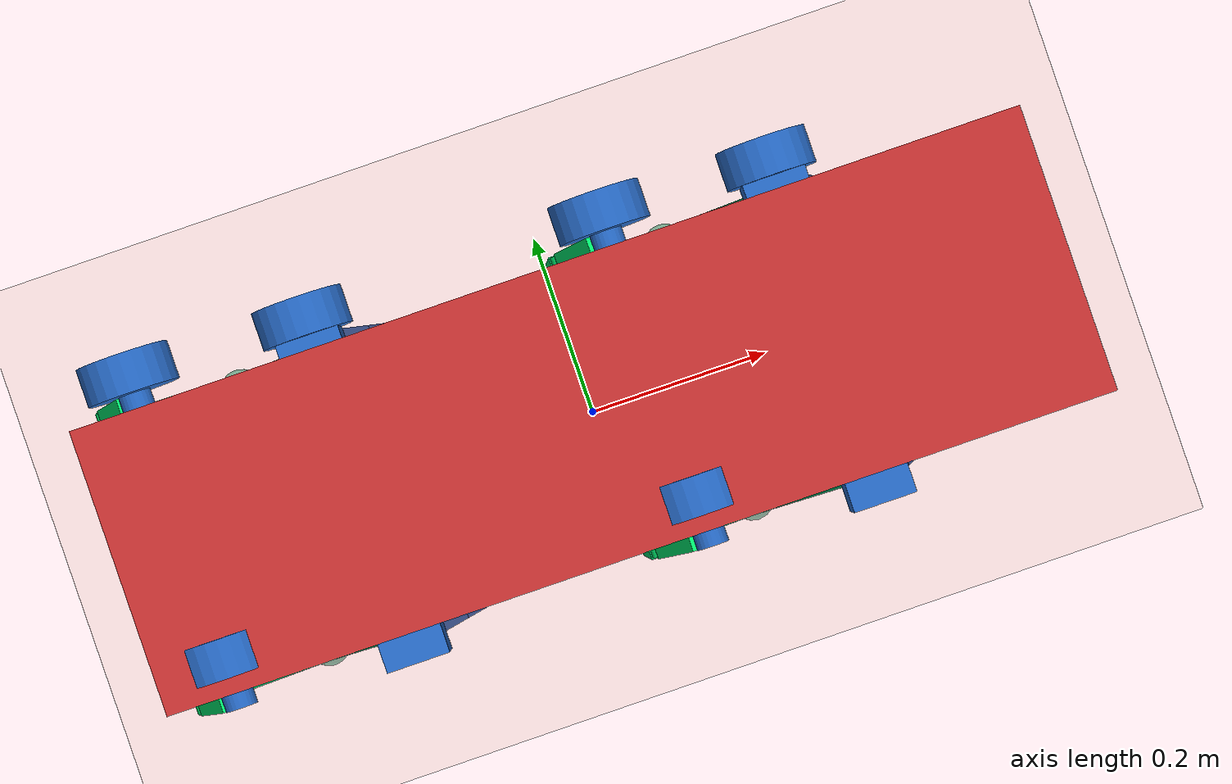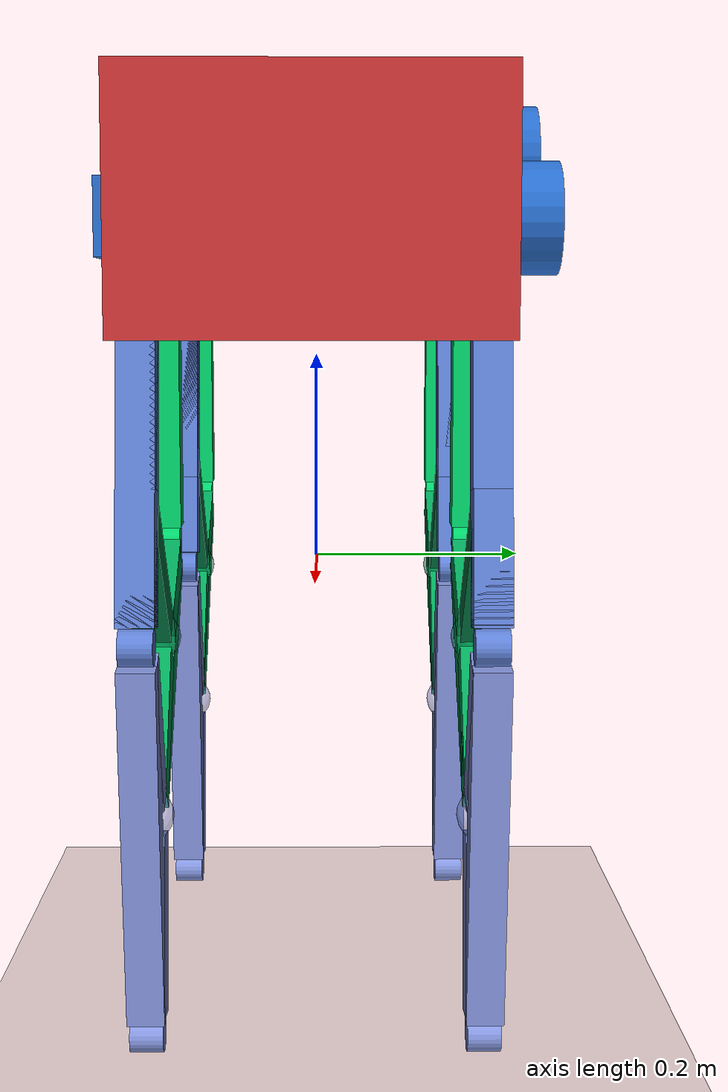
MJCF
<?xml version="1.0" encoding="utf-8"?>
<mujoco model="quadruped_torso">
  <compiler angle="radian" inertiafromgeom="true" coordinate="local" />
  <option timestep="0.01" gravity="0 0 -9.81" />
  <worldbody>
    <geom name="floor" type="plane" size="2 2 0.1" pos="0 0 -0.5" rgba="6 0.9 0.9 1" />
    <body name="torso" pos="0 0 0.32" quat="1 0 0 0">
      <geom name="torso_body" type="box" size="0.5 0.15 0.1" rgba="0.8 0.2 0.2 1" />
      <inertial pos="0 0 0" mass="2.0" diaginertia="0.1 0.2 0.1" />
      <body name="leg_front_right" pos="0.25 0.15 0">
        <geom name="G_vis0_front_right" type="box" rgba="0.1568627450980392 0.42745098039215684 0.8 1.0" contype="1" conaffinity="1" pos="0.0 0.0 0.0" quat="1.0 0.0 0.0 0.0" size="0.0335 0.0335 0.0335" />
        <inertial pos="0.0 0.0 0.0" mass="0.04903493747122909" diaginertia="3.66863057180579e-05 3.66863057180579e-05 3.66863057180579e-05" />
        <body name="L3_front_right" pos="0.0 0.0 0.0" quat="0.07437622984429398 5.650851124421949e-17 0.9972302524663743 5.650851124421949e-17">
          <joint name="Main_ground_front_right" type="hinge" axis="0 1 0" range="-3.141592653589793 3.141592653589793" damping="0.1" />
          <geom name="L3_vis0_front_right" type="box" rgba="0.37254901960784315 0.5019607843137255 0.8352941176470589 1.0" contype="1" conaffinity="1" pos="6.1321225795853815e-18 0.0 0.3057830760522891" quat="1.0 0.0 0.0 0.0" size="0.016750000417232513 0.016750000417232513 0.041494395021298744" />
          <geom name="L3_vis1_front_right" type="box" rgba="0.37254901960784315 0.5019607843137255 0.8352941176470589 1.0" contype="1" conaffinity="1" pos="3.974438985929238e-18 0.0 0.12376934030687893" quat="1.0 0.0 0.0 0.0" size="0.016750000417232513 0.016750000417232513 0.10701933988964642" />
          <geom name="L3_vis2_front_right" type="box" rgba="0.37254901960784315 0.5019607843137255 0.8352941176470589 1.0" contype="1" conaffinity="1" pos="2.1576835936561436e-18 0.0 0.1820137357454102" quat="1.0 0.0 0.0 0.0" size="0.016750000417232513 0.016750000417232513 0.16526373532817767" />
          <inertial pos="0.0 0.0 0.20386" mass="0.29536707186095634" diaginertia="0.046740090156920405 0.04702657912522108 0.0003417349201298814" />
          <body name="L4_front_right" pos="4.315367187312287e-18 0.0 0.3640274714908204" quat="0.9889363528682975 0.0 0.14834045293024475 0.0">
            <joint name="Main_knee_front_right" type="hinge" axis="0 1 0" range="-3.141592653589793 3.141592653589793" damping="0.1" />
            <geom name="L4_vis0_front_right" type="box" rgba="0.5176470588235295 0.5843137254901961 0.8705882352941177 1.0" contype="1" conaffinity="1" pos="0.025481923004357435 0.0 0.26938032890320707" quat="0.13111872764660734 5.267499460431457e-17 0.9913666724579432 5.267499460431457e-17" size="0.016750000417232513 0.016750000417232513 0.08126739599789375" />
            <geom name="L4_vis1_front_right" type="box" rgba="0.5176470588235295 0.5843137254901961 0.8705882352941177 1.0" contype="1" conaffinity="1" pos="6.938893903907228e-18 0.0 0.1820137357454102" quat="1.0 0.0 0.0 0.0" size="0.016750000417232513 0.016750000417232513 0.16526373532817767" />
            <geom name="L4_vis2_front_right" type="box" rgba="0.5176470588235295 0.5843137254901961 0.8705882352941177 1.0" contype="1" conaffinity="1" pos="0.02548192300435744 0.0 0.08736659315779688" quat="0.1414213562373094 -5.195736337412961e-17 -0.9899494936611666 5.195736337412961e-17" size="0.016750000417232513 0.016750000417232513 0.07425686745547257" />
            <inertial pos="0.01699 0.0 0.17959" mass="0.5012590142024277" diaginertia="0.2619561188565024 0.26221491311633094 0.0003525505859475547" />
            <body name="EE_front_right" pos="0.0 0.0 0.3640274714908204" quat="0.07437622984429398 5.650851124421949e-17 0.9972302524663743 5.650851124421949e-17">
              <geom name="EE_vis0_front_right" type="sphere" rgba="0.6431372549019608 0.6666666666666666 0.9058823529411765 1.0" contype="1" conaffinity="1" pos="0.0 0.0 0.0" quat="1.0 0.0 0.0 0.0" size="0.002142857142857143" />
              <inertial pos="0.0 0.0 0.0" mass="2.979933439782622e-05" diaginertia="5.473347134294612e-11 5.473347134294612e-11 5.473347134294612e-11" />
            </body>
            <body name="Main_ee_L4Unit_front_right" pos="0.0 0.0 0.3640274714908204" quat="0.0525919364819896 0.0525919364819895 0.7051482739233461 -0.705148273923346">
              <geom name="Main_ee_L4Unit_vis0_front_right" type="cylinder" rgba="0.5176470588235295 0.5843137254901961 0.8705882352941177 0.9" contype="1" conaffinity="1" size="0.016 0.015" />
              <inertial pos="0 0 0" mass="0.1" diaginertia="0.00065 0.00065 0.0008" />
            </body>
            <body name="Main_connection_2_L4Pseudo_front_right" pos="0.05096384600871484 0.0 0.17473318631559376" quat="0.8980331588121276 0.0 -0.4399277732468274 0.0">
              <geom name="Main_connection_2_L4Pseudo_vis0_front_right" type="sphere" rgba="0.5176470588235295 0.5843137254901961 0.8705882352941177 0.5" contype="1" conaffinity="1" size="0.02392857202461788" />
              <inertial pos="0 0 0" mass="0.05" diaginertia="1.145153118274651e-05 1.145153118274651e-05 1.145153118274651e-05" />
            </body>
          </body>
          <body name="Main_knee_L3Unit_front_right" pos="4.315367187312287e-18 0.0 0.3640274714908204" quat="0.6992836012750656 0.6992836012750655 0.10489254019125986 -0.10489254019125985">
            <geom name="Main_knee_L3Unit_vis0_front_right" type="cylinder" rgba="0.37254901960784315 0.5019607843137255 0.8352941176470589 0.9" contype="1" conaffinity="1" size="0.016 0.015" />
            <inertial pos="0 0 0" mass="0.1" diaginertia="0.00065 0.00065 0.0008" />
          </body>
          <body name="L8_front_right" pos="7.948877971858476e-18 0.0 0.24753868061375786" quat="0.8807107787388322 0.0 0.47365443544132435 0.0">
            <joint name="Main_connection_1_front_right" type="hinge" axis="0 1 0" range="-3.141592653589793 3.141592653589793" damping="0.1" />
            <geom name="L8_vis0_front_right" type="box" rgba="0.01568627450980392 0.5058823529411764 0.29411764705882354 1.0" contype="1" conaffinity="1" pos="-0.0 0.0 0.1009" quat="1.0 0.0 0.0 0.0" size="0.01675 0.01675 0.08415218035305282" />
            <inertial pos="-0.0 0.0 0.1009" mass="0.13655992824415478" diaginertia="0.0003351249810435438 0.0003351249810435438 2.554239657866712e-05" />
            <body name="branch_0_L8Pseudo_front_right" pos="0.0 0.0 0.20180436070610566" quat="-0.6966608812115375 8.658629315504744e-17 0.717400597009484 8.658629315504744e-17">
              <geom name="branch_0_L8Pseudo_vis0_front_right" type="sphere" rgba="0.01568627450980392 0.5058823529411764 0.29411764705882354 0.5" contype="1" conaffinity="1" size="0.02392857142857143" />
              <inertial pos="0 0 0" mass="0.05" diaginertia="1.1451530612244902e-05 1.1451530612244902e-05 1.1451530612244902e-05" />
            </body>
          </body>
          <body name="Main_connection_1_L3Unit_front_right" pos="7.948877971858476e-18 0.0 0.24753868061375786" quat="0.6227565639103132 0.6227565639103133 0.33492426323964625 -0.3349242632396462">
            <geom name="Main_connection_1_L3Unit_vis0_front_right" type="cylinder" rgba="0.37254901960784315 0.5019607843137255 0.8352941176470589 0.9" contype="1" conaffinity="1" size="0.016 0.015" />
            <inertial pos="0 0 0" mass="0.1" diaginertia="0.00065 0.00065 0.0008" />
          </body>
        </body>
        <body name="Main_ground_GActuator_front_right" pos="0.0 0.03675000041723252 0.0" quat="0.0525919364819896 0.0525919364819895 0.7051482739233461 -0.705148273923346">
          <geom name="Main_ground_GActuator_vis0_front_right" type="cylinder" rgba="0.1568627450980392 0.42745098039215684 0.8 0.9" contype="1" conaffinity="1" size="0.048 0.02" />
          <inertial pos="0 0 0" mass="0.44" diaginertia="0.0067466666666666664 0.0067466666666666664 0.01056" />
        </body>
        <body name="Main_ground_GUnit_front_right" pos="0.0 0.0 0.0" quat="0.0525919364819896 0.0525919364819895 0.7051482739233461 -0.705148273923346">
          <geom name="Main_ground_GUnit_vis0_front_right" type="cylinder" rgba="0.1568627450980392 0.42745098039215684 0.8 0.9" contype="1" conaffinity="1" size="0.016750000417232513 0.016750000417232513" />
          <inertial pos="0 0 0" mass="0.1" diaginertia="0.0006979166840513548 0.0006979166840513548 0.0008375000208616257" />
        </body>
        <body name="L7_front_right" pos="-0.18000000000000002 0.0 0.06480000000000001" quat="-0.15086421372374947 6.976927370879126e-17 0.9885544947131214 6.976927370879126e-17">
          <joint name="Ground_connection_front_right" type="hinge" axis="0 1 0" range="-3.141592653589793 3.141592653589793" damping="0.1" />
          <geom name="L7_vis0_front_right" type="box" rgba="0.0 1.0 0.4666666666666667 1.0" contype="1" conaffinity="1" pos="-0.0 0.0 0.07543" quat="1.0 0.0 0.0 0.0" size="0.01675 0.01675 0.05868374576408096" />
          <inertial pos="-0.0 0.0 0.07543" mass="0.09523042750668785" diaginertia="0.00011822364017562971 0.00011822364017562971 1.7812057878230073e-05" />
          <body name="L6_front_right" pos="-5.551115123125783e-17 0.0 0.15086749152816192" quat="0.9908668077066263 0.0 -0.13484424120176491 0.0">
            <joint name="branch_2_front_right" type="hinge" axis="0 1 0" range="-3.141592653589793 3.141592653589793" damping="0.1" />
            <geom name="L6_vis0_front_right" type="box" rgba="0.0 0.8274509803921568 0.4196078431372549 1.0" contype="1" conaffinity="1" pos="0.0 0.0 0.11308" quat="1.0 0.0 0.0 0.0" size="0.01675 0.01675 0.09632924654860417" />
            <inertial pos="0.0 0.0 0.11308" mass="0.15632054857404132" diaginertia="0.0004981355538131413 0.0004981355538131413 2.9238455939536312e-05" />
            <body name="L5_front_right" pos="1.1102230246251565e-16 0.0 0.2261584930972083" quat="0.9221247588124448 0.0 -0.3868926584791841 0.0">
              <joint name="branch_1_front_right" type="hinge" axis="0 1 0" range="-3.141592653589793 3.141592653589793" damping="0.1" />
              <geom name="L5_vis0_front_right" type="box" rgba="0.0 0.6627450980392157 0.3607843137254902 1.0" contype="1" conaffinity="1" pos="-0.017313186151101806 0.0 0.22013287438567025" quat="0.9948405908123037 0.0 0.10145047497289715 0.0" size="0.016750000417232513 0.016750000417232513 0.06902079181415591" />
              <geom name="L5_vis1_front_right" type="box" rgba="0.0 0.6627450980392157 0.3607843137254902 1.0" contype="1" conaffinity="1" pos="-0.017313186151101806 0.0 0.06806381112821479" quat="0.12422055223167687 5.315175785701328e-17 0.9922546318376434 5.315175785701328e-17" size="0.016750000417232513 0.016750000417232513 0.053481251885428294" />
              <geom name="L5_vis2_front_right" type="box" rgba="0.0 0.6627450980392157 0.3607843137254902 1.0" contype="1" conaffinity="1" pos="0.0 0.0 0.15206906325745548" quat="1.0 0.0 0.0 0.0" size="0.016750000417232513 0.016750000417232513 0.13531906284022296" />
              <inertial pos="-0.01154 0.0 0.14676" mass="0.37744913378400663" diaginertia="0.11719219359867927 0.12293904243849035 0.005817447558393084" />
              <body name="branch_0_L5Pseudo_front_right" pos="-0.03462637230220361 0.0 0.13612762225642958" quat="1.0 0.0 0.0 0.0">
                <joint name="branch_0_L5_revolute_front_right" type="hinge" axis="0 1 0" range="-3.141592653589793 3.141592653589793" damping="0.1" />
                <geom name="branch_0_L5Pseudo_vis0_front_right" type="sphere" rgba="0.0 0.6627450980392157 0.3607843137254902 0.5" contype="1" conaffinity="1" size="0.02392857202461788" />
                <inertial pos="0 0 0" mass="0.05" diaginertia="1.145153118274651e-05 1.145153118274651e-05 1.145153118274651e-05" />
              </body>
              <body name="Main_connection_2_L5Pseudo_front_right" pos="0.0 0.0 0.30413812651491096" quat="1.0 0.0 0.0 0.0">
                <joint name="Main_connection_2_L5_revolute_front_right" type="hinge" axis="0 1 0" range="-3.141592653589793 3.141592653589793" damping="0.1" />
                <geom name="Main_connection_2_L5Pseudo_vis0_front_right" type="sphere" rgba="0.0 0.6627450980392157 0.3607843137254902 0.5" contype="1" conaffinity="1" size="0.02392857202461788" />
                <inertial pos="0 0 0" mass="0.05" diaginertia="1.145153118274651e-05 1.145153118274651e-05 1.145153118274651e-05" />
              </body>
            </body>
            <body name="branch_1_L6Unit_front_right" pos="1.1102230246251565e-16 0.0 0.2261584930972083" quat="0.6520406700562894 0.6520406700562893 -0.27357442240192215 0.273574422401922">
              <geom name="branch_1_L6Unit_vis0_front_right" type="cylinder" rgba="0.0 0.8274509803921568 0.4196078431372549 0.9" contype="1" conaffinity="1" size="0.016 0.015" />
              <inertial pos="0 0 0" mass="0.1" diaginertia="0.00065 0.00065 0.0008" />
            </body>
          </body>
          <body name="branch_2_L7Unit_front_right" pos="-5.551115123125783e-17 0.0 0.15086749152816192" quat="0.7006486389820223 0.7006486389820222 -0.09534927735772235 0.09534927735772233">
            <geom name="branch_2_L7Unit_vis0_front_right" type="cylinder" rgba="0.0 1.0 0.4666666666666667 0.9" contype="1" conaffinity="1" size="0.016 0.015" />
            <inertial pos="0 0 0" mass="0.1" diaginertia="0.00065 0.00065 0.0008" />
          </body>
        </body>
        <body name="Ground_connection_GActuator_front_right" pos="-0.18000000000000002 0.036750000000000005 0.06480000000000001" quat="-0.10667710856243973 -0.10667710856243982 0.6990135867840891 -0.6990135867840892">
          <geom name="Ground_connection_GActuator_vis0_front_right" type="cylinder" rgba="0.1568627450980392 0.42745098039215684 0.8 0.9" contype="1" conaffinity="1" size="0.048 0.02" />
          <inertial pos="0 0 0" mass="0.44" diaginertia="0.0067466666666666664 0.0067466666666666664 0.01056" />
        </body>
        <body name="Ground_connection_GUnit_front_right" pos="-0.18000000000000002 0.0 0.06480000000000001" quat="-0.10667710856243973 -0.10667710856243982 0.6990135867840891 -0.6990135867840892">
          <geom name="Ground_connection_GUnit_vis0_front_right" type="cylinder" rgba="0.1568627450980392 0.42745098039215684 0.8 0.9" contype="1" conaffinity="1" size="0.01675 0.01675" />
          <inertial pos="0 0 0" mass="0.1" diaginertia="0.0006979166666666668 0.0006979166666666668 0.0008375000000000001" />
        </body>
      </body>
      <body name="leg_front_left" pos="0.25 -0.15 0">
        <geom name="G_vis0_front_left" type="box" rgba="0.1568627450980392 0.42745098039215684 0.8 1.0" contype="1" conaffinity="1" pos="0.0 0.0 0.0" quat="1.0 0.0 0.0 0.0" size="0.0335 0.0335 0.0335" />
        <inertial pos="0.0 0.0 0.0" mass="0.04903493747122909" diaginertia="3.66863057180579e-05 3.66863057180579e-05 3.66863057180579e-05" />
        <body name="L3_front_left" pos="0.0 0.0 0.0" quat="0.07437622984429398 5.650851124421949e-17 0.9972302524663743 5.650851124421949e-17">
          <joint name="Main_ground_front_left" type="hinge" axis="0 1 0" range="-3.141592653589793 3.141592653589793" damping="0.1" />
          <geom name="L3_vis0_front_left" type="box" rgba="0.37254901960784315 0.5019607843137255 0.8352941176470589 1.0" contype="1" conaffinity="1" pos="6.1321225795853815e-18 0.0 0.3057830760522891" quat="1.0 0.0 0.0 0.0" size="0.016750000417232513 0.016750000417232513 0.041494395021298744" />
          <geom name="L3_vis1_front_left" type="box" rgba="0.37254901960784315 0.5019607843137255 0.8352941176470589 1.0" contype="1" conaffinity="1" pos="3.974438985929238e-18 0.0 0.12376934030687893" quat="1.0 0.0 0.0 0.0" size="0.016750000417232513 0.016750000417232513 0.10701933988964642" />
          <geom name="L3_vis2_front_left" type="box" rgba="0.37254901960784315 0.5019607843137255 0.8352941176470589 1.0" contype="1" conaffinity="1" pos="2.1576835936561436e-18 0.0 0.1820137357454102" quat="1.0 0.0 0.0 0.0" size="0.016750000417232513 0.016750000417232513 0.16526373532817767" />
          <inertial pos="0.0 0.0 0.20386" mass="0.29536707186095634" diaginertia="0.046740090156920405 0.04702657912522108 0.0003417349201298814" />
          <body name="L4_front_left" pos="4.315367187312287e-18 0.0 0.3640274714908204" quat="0.9889363528682975 0.0 0.14834045293024475 0.0">
            <joint name="Main_knee_front_left" type="hinge" axis="0 1 0" range="-3.141592653589793 3.141592653589793" damping="0.1" />
            <geom name="L4_vis0_front_left" type="box" rgba="0.5176470588235295 0.5843137254901961 0.8705882352941177 1.0" contype="1" conaffinity="1" pos="0.025481923004357435 0.0 0.26938032890320707" quat="0.13111872764660734 5.267499460431457e-17 0.9913666724579432 5.267499460431457e-17" size="0.016750000417232513 0.016750000417232513 0.08126739599789375" />
            <geom name="L4_vis1_front_left" type="box" rgba="0.5176470588235295 0.5843137254901961 0.8705882352941177 1.0" contype="1" conaffinity="1" pos="6.938893903907228e-18 0.0 0.1820137357454102" quat="1.0 0.0 0.0 0.0" size="0.016750000417232513 0.016750000417232513 0.16526373532817767" />
            <geom name="L4_vis2_front_left" type="box" rgba="0.5176470588235295 0.5843137254901961 0.8705882352941177 1.0" contype="1" conaffinity="1" pos="0.02548192300435744 0.0 0.08736659315779688" quat="0.1414213562373094 -5.195736337412961e-17 -0.9899494936611666 5.195736337412961e-17" size="0.016750000417232513 0.016750000417232513 0.07425686745547257" />
            <inertial pos="0.01699 0.0 0.17959" mass="0.5012590142024277" diaginertia="0.2619561188565024 0.26221491311633094 0.0003525505859475547" />
            <body name="EE_front_left" pos="0.0 0.0 0.3640274714908204" quat="0.07437622984429398 5.650851124421949e-17 0.9972302524663743 5.650851124421949e-17">
              <geom name="EE_vis0_front_left" type="sphere" rgba="0.6431372549019608 0.6666666666666666 0.9058823529411765 1.0" contype="1" conaffinity="1" pos="0.0 0.0 0.0" quat="1.0 0.0 0.0 0.0" size="0.002142857142857143" />
              <inertial pos="0.0 0.0 0.0" mass="2.979933439782622e-05" diaginertia="5.473347134294612e-11 5.473347134294612e-11 5.473347134294612e-11" />
            </body>
            <body name="Main_ee_L4Unit_front_left" pos="0.0 0.0 0.3640274714908204" quat="0.0525919364819896 0.0525919364819895 0.7051482739233461 -0.705148273923346">
              <geom name="Main_ee_L4Unit_vis0_front_left" type="cylinder" rgba="0.5176470588235295 0.5843137254901961 0.8705882352941177 0.9" contype="1" conaffinity="1" size="0.016 0.015" />
              <inertial pos="0 0 0" mass="0.1" diaginertia="0.00065 0.00065 0.0008" />
            </body>
            <body name="Main_connection_2_L4Pseudo_front_left" pos="0.05096384600871484 0.0 0.17473318631559376" quat="0.8980331588121276 0.0 -0.4399277732468274 0.0">
              <geom name="Main_connection_2_L4Pseudo_vis0_front_left" type="sphere" rgba="0.5176470588235295 0.5843137254901961 0.8705882352941177 0.5" contype="1" conaffinity="1" size="0.02392857202461788" />
              <inertial pos="0 0 0" mass="0.05" diaginertia="1.145153118274651e-05 1.145153118274651e-05 1.145153118274651e-05" />
            </body>
          </body>
          <body name="Main_knee_L3Unit_front_left" pos="4.315367187312287e-18 0.0 0.3640274714908204" quat="0.6992836012750656 0.6992836012750655 0.10489254019125986 -0.10489254019125985">
            <geom name="Main_knee_L3Unit_vis0_front_left" type="cylinder" rgba="0.37254901960784315 0.5019607843137255 0.8352941176470589 0.9" contype="1" conaffinity="1" size="0.016 0.015" />
            <inertial pos="0 0 0" mass="0.1" diaginertia="0.00065 0.00065 0.0008" />
          </body>
          <body name="L8_front_left" pos="7.948877971858476e-18 0.0 0.24753868061375786" quat="0.8807107787388322 0.0 0.47365443544132435 0.0">
            <joint name="Main_connection_1_front_left" type="hinge" axis="0 1 0" range="-3.141592653589793 3.141592653589793" damping="0.1" />
            <geom name="L8_vis0_front_left" type="box" rgba="0.01568627450980392 0.5058823529411764 0.29411764705882354 1.0" contype="1" conaffinity="1" pos="-0.0 0.0 0.1009" quat="1.0 0.0 0.0 0.0" size="0.01675 0.01675 0.08415218035305282" />
            <inertial pos="-0.0 0.0 0.1009" mass="0.13655992824415478" diaginertia="0.0003351249810435438 0.0003351249810435438 2.554239657866712e-05" />
            <body name="branch_0_L8Pseudo_front_left" pos="0.0 0.0 0.20180436070610566" quat="-0.6966608812115375 8.658629315504744e-17 0.717400597009484 8.658629315504744e-17">
              <geom name="branch_0_L8Pseudo_vis0_front_left" type="sphere" rgba="0.01568627450980392 0.5058823529411764 0.29411764705882354 0.5" contype="1" conaffinity="1" size="0.02392857142857143" />
              <inertial pos="0 0 0" mass="0.05" diaginertia="1.1451530612244902e-05 1.1451530612244902e-05 1.1451530612244902e-05" />
            </body>
          </body>
          <body name="Main_connection_1_L3Unit_front_left" pos="7.948877971858476e-18 0.0 0.24753868061375786" quat="0.6227565639103132 0.6227565639103133 0.33492426323964625 -0.3349242632396462">
            <geom name="Main_connection_1_L3Unit_vis0_front_left" type="cylinder" rgba="0.37254901960784315 0.5019607843137255 0.8352941176470589 0.9" contype="1" conaffinity="1" size="0.016 0.015" />
            <inertial pos="0 0 0" mass="0.1" diaginertia="0.00065 0.00065 0.0008" />
          </body>
        </body>
        <body name="Main_ground_GActuator_front_left" pos="0.0 0.03675000041723252 0.0" quat="0.0525919364819896 0.0525919364819895 0.7051482739233461 -0.705148273923346">
          <geom name="Main_ground_GActuator_vis0_front_left" type="cylinder" rgba="0.1568627450980392 0.42745098039215684 0.8 0.9" contype="1" conaffinity="1" size="0.048 0.02" />
          <inertial pos="0 0 0" mass="0.44" diaginertia="0.0067466666666666664 0.0067466666666666664 0.01056" />
        </body>
        <body name="Main_ground_GUnit_front_left" pos="0.0 0.0 0.0" quat="0.0525919364819896 0.0525919364819895 0.7051482739233461 -0.705148273923346">
          <geom name="Main_ground_GUnit_vis0_front_left" type="cylinder" rgba="0.1568627450980392 0.42745098039215684 0.8 0.9" contype="1" conaffinity="1" size="0.016750000417232513 0.016750000417232513" />
          <inertial pos="0 0 0" mass="0.1" diaginertia="0.0006979166840513548 0.0006979166840513548 0.0008375000208616257" />
        </body>
        <body name="L7_front_left" pos="-0.18000000000000002 0.0 0.06480000000000001" quat="-0.15086421372374947 6.976927370879126e-17 0.9885544947131214 6.976927370879126e-17">
          <joint name="Ground_connection_front_left" type="hinge" axis="0 1 0" range="-3.141592653589793 3.141592653589793" damping="0.1" />
          <geom name="L7_vis0_front_left" type="box" rgba="0.0 1.0 0.4666666666666667 1.0" contype="1" conaffinity="1" pos="-0.0 0.0 0.07543" quat="1.0 0.0 0.0 0.0" size="0.01675 0.01675 0.05868374576408096" />
          <inertial pos="-0.0 0.0 0.07543" mass="0.09523042750668785" diaginertia="0.00011822364017562971 0.00011822364017562971 1.7812057878230073e-05" />
          <body name="L6_front_left" pos="-5.551115123125783e-17 0.0 0.15086749152816192" quat="0.9908668077066263 0.0 -0.13484424120176491 0.0">
            <joint name="branch_2_front_left" type="hinge" axis="0 1 0" range="-3.141592653589793 3.141592653589793" damping="0.1" />
            <geom name="L6_vis0_front_left" type="box" rgba="0.0 0.8274509803921568 0.4196078431372549 1.0" contype="1" conaffinity="1" pos="0.0 0.0 0.11308" quat="1.0 0.0 0.0 0.0" size="0.01675 0.01675 0.09632924654860417" />
            <inertial pos="0.0 0.0 0.11308" mass="0.15632054857404132" diaginertia="0.0004981355538131413 0.0004981355538131413 2.9238455939536312e-05" />
            <body name="L5_front_left" pos="1.1102230246251565e-16 0.0 0.2261584930972083" quat="0.9221247588124448 0.0 -0.3868926584791841 0.0">
              <joint name="branch_1_front_left" type="hinge" axis="0 1 0" range="-3.141592653589793 3.141592653589793" damping="0.1" />
              <geom name="L5_vis0_front_left" type="box" rgba="0.0 0.6627450980392157 0.3607843137254902 1.0" contype="1" conaffinity="1" pos="-0.017313186151101806 0.0 0.22013287438567025" quat="0.9948405908123037 0.0 0.10145047497289715 0.0" size="0.016750000417232513 0.016750000417232513 0.06902079181415591" />
              <geom name="L5_vis1_front_left" type="box" rgba="0.0 0.6627450980392157 0.3607843137254902 1.0" contype="1" conaffinity="1" pos="-0.017313186151101806 0.0 0.06806381112821479" quat="0.12422055223167687 5.315175785701328e-17 0.9922546318376434 5.315175785701328e-17" size="0.016750000417232513 0.016750000417232513 0.053481251885428294" />
              <geom name="L5_vis2_front_left" type="box" rgba="0.0 0.6627450980392157 0.3607843137254902 1.0" contype="1" conaffinity="1" pos="0.0 0.0 0.15206906325745548" quat="1.0 0.0 0.0 0.0" size="0.016750000417232513 0.016750000417232513 0.13531906284022296" />
              <inertial pos="-0.01154 0.0 0.14676" mass="0.37744913378400663" diaginertia="0.11719219359867927 0.12293904243849035 0.005817447558393084" />
              <body name="branch_0_L5Pseudo_front_left" pos="-0.03462637230220361 0.0 0.13612762225642958" quat="1.0 0.0 0.0 0.0">
                <joint name="branch_0_L5_revolute_front_left" type="hinge" axis="0 1 0" range="-3.141592653589793 3.141592653589793" damping="0.1" />
                <geom name="branch_0_L5Pseudo_vis0_front_left" type="sphere" rgba="0.0 0.6627450980392157 0.3607843137254902 0.5" contype="1" conaffinity="1" size="0.02392857202461788" />
                <inertial pos="0 0 0" mass="0.05" diaginertia="1.145153118274651e-05 1.145153118274651e-05 1.145153118274651e-05" />
              </body>
              <body name="Main_connection_2_L5Pseudo_front_left" pos="0.0 0.0 0.30413812651491096" quat="1.0 0.0 0.0 0.0">
                <joint name="Main_connection_2_L5_revolute_front_left" type="hinge" axis="0 1 0" range="-3.141592653589793 3.141592653589793" damping="0.1" />
                <geom name="Main_connection_2_L5Pseudo_vis0_front_left" type="sphere" rgba="0.0 0.6627450980392157 0.3607843137254902 0.5" contype="1" conaffinity="1" size="0.02392857202461788" />
                <inertial pos="0 0 0" mass="0.05" diaginertia="1.145153118274651e-05 1.145153118274651e-05 1.145153118274651e-05" />
              </body>
            </body>
            <body name="branch_1_L6Unit_front_left" pos="1.1102230246251565e-16 0.0 0.2261584930972083" quat="0.6520406700562894 0.6520406700562893 -0.27357442240192215 0.273574422401922">
              <geom name="branch_1_L6Unit_vis0_front_left" type="cylinder" rgba="0.0 0.8274509803921568 0.4196078431372549 0.9" contype="1" conaffinity="1" size="0.016 0.015" />
              <inertial pos="0 0 0" mass="0.1" diaginertia="0.00065 0.00065 0.0008" />
            </body>
          </body>
          <body name="branch_2_L7Unit_front_left" pos="-5.551115123125783e-17 0.0 0.15086749152816192" quat="0.7006486389820223 0.7006486389820222 -0.09534927735772235 0.09534927735772233">
            <geom name="branch_2_L7Unit_vis0_front_left" type="cylinder" rgba="0.0 1.0 0.4666666666666667 0.9" contype="1" conaffinity="1" size="0.016 0.015" />
            <inertial pos="0 0 0" mass="0.1" diaginertia="0.00065 0.00065 0.0008" />
          </body>
        </body>
        <body name="Ground_connection_GActuator_front_left" pos="-0.18000000000000002 0.036750000000000005 0.06480000000000001" quat="-0.10667710856243973 -0.10667710856243982 0.6990135867840891 -0.6990135867840892">
          <geom name="Ground_connection_GActuator_vis0_front_left" type="cylinder" rgba="0.1568627450980392 0.42745098039215684 0.8 0.9" contype="1" conaffinity="1" size="0.048 0.02" />
          <inertial pos="0 0 0" mass="0.44" diaginertia="0.0067466666666666664 0.0067466666666666664 0.01056" />
        </body>
        <body name="Ground_connection_GUnit_front_left" pos="-0.18000000000000002 0.0 0.06480000000000001" quat="-0.10667710856243973 -0.10667710856243982 0.6990135867840891 -0.6990135867840892">
          <geom name="Ground_connection_GUnit_vis0_front_left" type="cylinder" rgba="0.1568627450980392 0.42745098039215684 0.8 0.9" contype="1" conaffinity="1" size="0.01675 0.01675" />
          <inertial pos="0 0 0" mass="0.1" diaginertia="0.0006979166666666668 0.0006979166666666668 0.0008375000000000001" />
        </body>
      </body>
      <body name="leg_rear_right" pos="-0.25 0.15 0">
        <geom name="G_vis0_rear_right" type="box" rgba="0.1568627450980392 0.42745098039215684 0.8 1.0" contype="1" conaffinity="1" pos="0.0 0.0 0.0" quat="1.0 0.0 0.0 0.0" size="0.0335 0.0335 0.0335" />
        <inertial pos="0.0 0.0 0.0" mass="0.04903493747122909" diaginertia="3.66863057180579e-05 3.66863057180579e-05 3.66863057180579e-05" />
        <body name="L3_rear_right" pos="0.0 0.0 0.0" quat="0.07437622984429398 5.650851124421949e-17 0.9972302524663743 5.650851124421949e-17">
          <joint name="Main_ground_rear_right" type="hinge" axis="0 1 0" range="-3.141592653589793 3.141592653589793" damping="0.1" />
          <geom name="L3_vis0_rear_right" type="box" rgba="0.37254901960784315 0.5019607843137255 0.8352941176470589 1.0" contype="1" conaffinity="1" pos="6.1321225795853815e-18 0.0 0.3057830760522891" quat="1.0 0.0 0.0 0.0" size="0.016750000417232513 0.016750000417232513 0.041494395021298744" />
          <geom name="L3_vis1_rear_right" type="box" rgba="0.37254901960784315 0.5019607843137255 0.8352941176470589 1.0" contype="1" conaffinity="1" pos="3.974438985929238e-18 0.0 0.12376934030687893" quat="1.0 0.0 0.0 0.0" size="0.016750000417232513 0.016750000417232513 0.10701933988964642" />
          <geom name="L3_vis2_rear_right" type="box" rgba="0.37254901960784315 0.5019607843137255 0.8352941176470589 1.0" contype="1" conaffinity="1" pos="2.1576835936561436e-18 0.0 0.1820137357454102" quat="1.0 0.0 0.0 0.0" size="0.016750000417232513 0.016750000417232513 0.16526373532817767" />
          <inertial pos="0.0 0.0 0.20386" mass="0.29536707186095634" diaginertia="0.046740090156920405 0.04702657912522108 0.0003417349201298814" />
          <body name="L4_rear_right" pos="4.315367187312287e-18 0.0 0.3640274714908204" quat="0.9889363528682975 0.0 0.14834045293024475 0.0">
            <joint name="Main_knee_rear_right" type="hinge" axis="0 1 0" range="-3.141592653589793 3.141592653589793" damping="0.1" />
            <geom name="L4_vis0_rear_right" type="box" rgba="0.5176470588235295 0.5843137254901961 0.8705882352941177 1.0" contype="1" conaffinity="1" pos="0.025481923004357435 0.0 0.26938032890320707" quat="0.13111872764660734 5.267499460431457e-17 0.9913666724579432 5.267499460431457e-17" size="0.016750000417232513 0.016750000417232513 0.08126739599789375" />
            <geom name="L4_vis1_rear_right" type="box" rgba="0.5176470588235295 0.5843137254901961 0.8705882352941177 1.0" contype="1" conaffinity="1" pos="6.938893903907228e-18 0.0 0.1820137357454102" quat="1.0 0.0 0.0 0.0" size="0.016750000417232513 0.016750000417232513 0.16526373532817767" />
            <geom name="L4_vis2_rear_right" type="box" rgba="0.5176470588235295 0.5843137254901961 0.8705882352941177 1.0" contype="1" conaffinity="1" pos="0.02548192300435744 0.0 0.08736659315779688" quat="0.1414213562373094 -5.195736337412961e-17 -0.9899494936611666 5.195736337412961e-17" size="0.016750000417232513 0.016750000417232513 0.07425686745547257" />
            <inertial pos="0.01699 0.0 0.17959" mass="0.5012590142024277" diaginertia="0.2619561188565024 0.26221491311633094 0.0003525505859475547" />
            <body name="EE_rear_right" pos="0.0 0.0 0.3640274714908204" quat="0.07437622984429398 5.650851124421949e-17 0.9972302524663743 5.650851124421949e-17">
              <geom name="EE_vis0_rear_right" type="sphere" rgba="0.6431372549019608 0.6666666666666666 0.9058823529411765 1.0" contype="1" conaffinity="1" pos="0.0 0.0 0.0" quat="1.0 0.0 0.0 0.0" size="0.002142857142857143" />
              <inertial pos="0.0 0.0 0.0" mass="2.979933439782622e-05" diaginertia="5.473347134294612e-11 5.473347134294612e-11 5.473347134294612e-11" />
            </body>
            <body name="Main_ee_L4Unit_rear_right" pos="0.0 0.0 0.3640274714908204" quat="0.0525919364819896 0.0525919364819895 0.7051482739233461 -0.705148273923346">
              <geom name="Main_ee_L4Unit_vis0_rear_right" type="cylinder" rgba="0.5176470588235295 0.5843137254901961 0.8705882352941177 0.9" contype="1" conaffinity="1" size="0.016 0.015" />
              <inertial pos="0 0 0" mass="0.1" diaginertia="0.00065 0.00065 0.0008" />
            </body>
            <body name="Main_connection_2_L4Pseudo_rear_right" pos="0.05096384600871484 0.0 0.17473318631559376" quat="0.8980331588121276 0.0 -0.4399277732468274 0.0">
              <geom name="Main_connection_2_L4Pseudo_vis0_rear_right" type="sphere" rgba="0.5176470588235295 0.5843137254901961 0.8705882352941177 0.5" contype="1" conaffinity="1" size="0.02392857202461788" />
              <inertial pos="0 0 0" mass="0.05" diaginertia="1.145153118274651e-05 1.145153118274651e-05 1.145153118274651e-05" />
            </body>
          </body>
          <body name="Main_knee_L3Unit_rear_right" pos="4.315367187312287e-18 0.0 0.3640274714908204" quat="0.6992836012750656 0.6992836012750655 0.10489254019125986 -0.10489254019125985">
            <geom name="Main_knee_L3Unit_vis0_rear_right" type="cylinder" rgba="0.37254901960784315 0.5019607843137255 0.8352941176470589 0.9" contype="1" conaffinity="1" size="0.016 0.015" />
            <inertial pos="0 0 0" mass="0.1" diaginertia="0.00065 0.00065 0.0008" />
          </body>
          <body name="L8_rear_right" pos="7.948877971858476e-18 0.0 0.24753868061375786" quat="0.8807107787388322 0.0 0.47365443544132435 0.0">
            <joint name="Main_connection_1_rear_right" type="hinge" axis="0 1 0" range="-3.141592653589793 3.141592653589793" damping="0.1" />
            <geom name="L8_vis0_rear_right" type="box" rgba="0.01568627450980392 0.5058823529411764 0.29411764705882354 1.0" contype="1" conaffinity="1" pos="-0.0 0.0 0.1009" quat="1.0 0.0 0.0 0.0" size="0.01675 0.01675 0.08415218035305282" />
            <inertial pos="-0.0 0.0 0.1009" mass="0.13655992824415478" diaginertia="0.0003351249810435438 0.0003351249810435438 2.554239657866712e-05" />
            <body name="branch_0_L8Pseudo_rear_right" pos="0.0 0.0 0.20180436070610566" quat="-0.6966608812115375 8.658629315504744e-17 0.717400597009484 8.658629315504744e-17">
              <geom name="branch_0_L8Pseudo_vis0_rear_right" type="sphere" rgba="0.01568627450980392 0.5058823529411764 0.29411764705882354 0.5" contype="1" conaffinity="1" size="0.02392857142857143" />
              <inertial pos="0 0 0" mass="0.05" diaginertia="1.1451530612244902e-05 1.1451530612244902e-05 1.1451530612244902e-05" />
            </body>
          </body>
          <body name="Main_connection_1_L3Unit_rear_right" pos="7.948877971858476e-18 0.0 0.24753868061375786" quat="0.6227565639103132 0.6227565639103133 0.33492426323964625 -0.3349242632396462">
            <geom name="Main_connection_1_L3Unit_vis0_rear_right" type="cylinder" rgba="0.37254901960784315 0.5019607843137255 0.8352941176470589 0.9" contype="1" conaffinity="1" size="0.016 0.015" />
            <inertial pos="0 0 0" mass="0.1" diaginertia="0.00065 0.00065 0.0008" />
          </body>
        </body>
        <body name="Main_ground_GActuator_rear_right" pos="0.0 0.03675000041723252 0.0" quat="0.0525919364819896 0.0525919364819895 0.7051482739233461 -0.705148273923346">
          <geom name="Main_ground_GActuator_vis0_rear_right" type="cylinder" rgba="0.1568627450980392 0.42745098039215684 0.8 0.9" contype="1" conaffinity="1" size="0.048 0.02" />
          <inertial pos="0 0 0" mass="0.44" diaginertia="0.0067466666666666664 0.0067466666666666664 0.01056" />
        </body>
        <body name="Main_ground_GUnit_rear_right" pos="0.0 0.0 0.0" quat="0.0525919364819896 0.0525919364819895 0.7051482739233461 -0.705148273923346">
          <geom name="Main_ground_GUnit_vis0_rear_right" type="cylinder" rgba="0.1568627450980392 0.42745098039215684 0.8 0.9" contype="1" conaffinity="1" size="0.016750000417232513 0.016750000417232513" />
          <inertial pos="0 0 0" mass="0.1" diaginertia="0.0006979166840513548 0.0006979166840513548 0.0008375000208616257" />
        </body>
        <body name="L7_rear_right" pos="-0.18000000000000002 0.0 0.06480000000000001" quat="-0.15086421372374947 6.976927370879126e-17 0.9885544947131214 6.976927370879126e-17">
          <joint name="Ground_connection_rear_right" type="hinge" axis="0 1 0" range="-3.141592653589793 3.141592653589793" damping="0.1" />
          <geom name="L7_vis0_rear_right" type="box" rgba="0.0 1.0 0.4666666666666667 1.0" contype="1" conaffinity="1" pos="-0.0 0.0 0.07543" quat="1.0 0.0 0.0 0.0" size="0.01675 0.01675 0.05868374576408096" />
          <inertial pos="-0.0 0.0 0.07543" mass="0.09523042750668785" diaginertia="0.00011822364017562971 0.00011822364017562971 1.7812057878230073e-05" />
          <body name="L6_rear_right" pos="-5.551115123125783e-17 0.0 0.15086749152816192" quat="0.9908668077066263 0.0 -0.13484424120176491 0.0">
            <joint name="branch_2_rear_right" type="hinge" axis="0 1 0" range="-3.141592653589793 3.141592653589793" damping="0.1" />
            <geom name="L6_vis0_rear_right" type="box" rgba="0.0 0.8274509803921568 0.4196078431372549 1.0" contype="1" conaffinity="1" pos="0.0 0.0 0.11308" quat="1.0 0.0 0.0 0.0" size="0.01675 0.01675 0.09632924654860417" />
            <inertial pos="0.0 0.0 0.11308" mass="0.15632054857404132" diaginertia="0.0004981355538131413 0.0004981355538131413 2.9238455939536312e-05" />
            <body name="L5_rear_right" pos="1.1102230246251565e-16 0.0 0.2261584930972083" quat="0.9221247588124448 0.0 -0.3868926584791841 0.0">
              <joint name="branch_1_rear_right" type="hinge" axis="0 1 0" range="-3.141592653589793 3.141592653589793" damping="0.1" />
              <geom name="L5_vis0_rear_right" type="box" rgba="0.0 0.6627450980392157 0.3607843137254902 1.0" contype="1" conaffinity="1" pos="-0.017313186151101806 0.0 0.22013287438567025" quat="0.9948405908123037 0.0 0.10145047497289715 0.0" size="0.016750000417232513 0.016750000417232513 0.06902079181415591" />
              <geom name="L5_vis1_rear_right" type="box" rgba="0.0 0.6627450980392157 0.3607843137254902 1.0" contype="1" conaffinity="1" pos="-0.017313186151101806 0.0 0.06806381112821479" quat="0.12422055223167687 5.315175785701328e-17 0.9922546318376434 5.315175785701328e-17" size="0.016750000417232513 0.016750000417232513 0.053481251885428294" />
              <geom name="L5_vis2_rear_right" type="box" rgba="0.0 0.6627450980392157 0.3607843137254902 1.0" contype="1" conaffinity="1" pos="0.0 0.0 0.15206906325745548" quat="1.0 0.0 0.0 0.0" size="0.016750000417232513 0.016750000417232513 0.13531906284022296" />
              <inertial pos="-0.01154 0.0 0.14676" mass="0.37744913378400663" diaginertia="0.11719219359867927 0.12293904243849035 0.005817447558393084" />
              <body name="branch_0_L5Pseudo_rear_right" pos="-0.03462637230220361 0.0 0.13612762225642958" quat="1.0 0.0 0.0 0.0">
                <joint name="branch_0_L5_revolute_rear_right" type="hinge" axis="0 1 0" range="-3.141592653589793 3.141592653589793" damping="0.1" />
                <geom name="branch_0_L5Pseudo_vis0_rear_right" type="sphere" rgba="0.0 0.6627450980392157 0.3607843137254902 0.5" contype="1" conaffinity="1" size="0.02392857202461788" />
                <inertial pos="0 0 0" mass="0.05" diaginertia="1.145153118274651e-05 1.145153118274651e-05 1.145153118274651e-05" />
              </body>
              <body name="Main_connection_2_L5Pseudo_rear_right" pos="0.0 0.0 0.30413812651491096" quat="1.0 0.0 0.0 0.0">
                <joint name="Main_connection_2_L5_revolute_rear_right" type="hinge" axis="0 1 0" range="-3.141592653589793 3.141592653589793" damping="0.1" />
                <geom name="Main_connection_2_L5Pseudo_vis0_rear_right" type="sphere" rgba="0.0 0.6627450980392157 0.3607843137254902 0.5" contype="1" conaffinity="1" size="0.02392857202461788" />
                <inertial pos="0 0 0" mass="0.05" diaginertia="1.145153118274651e-05 1.145153118274651e-05 1.145153118274651e-05" />
              </body>
            </body>
            <body name="branch_1_L6Unit_rear_right" pos="1.1102230246251565e-16 0.0 0.2261584930972083" quat="0.6520406700562894 0.6520406700562893 -0.27357442240192215 0.273574422401922">
              <geom name="branch_1_L6Unit_vis0_rear_right" type="cylinder" rgba="0.0 0.8274509803921568 0.4196078431372549 0.9" contype="1" conaffinity="1" size="0.016 0.015" />
              <inertial pos="0 0 0" mass="0.1" diaginertia="0.00065 0.00065 0.0008" />
            </body>
          </body>
          <body name="branch_2_L7Unit_rear_right" pos="-5.551115123125783e-17 0.0 0.15086749152816192" quat="0.7006486389820223 0.7006486389820222 -0.09534927735772235 0.09534927735772233">
            <geom name="branch_2_L7Unit_vis0_rear_right" type="cylinder" rgba="0.0 1.0 0.4666666666666667 0.9" contype="1" conaffinity="1" size="0.016 0.015" />
            <inertial pos="0 0 0" mass="0.1" diaginertia="0.00065 0.00065 0.0008" />
          </body>
        </body>
        <body name="Ground_connection_GActuator_rear_right" pos="-0.18000000000000002 0.036750000000000005 0.06480000000000001" quat="-0.10667710856243973 -0.10667710856243982 0.6990135867840891 -0.6990135867840892">
          <geom name="Ground_connection_GActuator_vis0_rear_right" type="cylinder" rgba="0.1568627450980392 0.42745098039215684 0.8 0.9" contype="1" conaffinity="1" size="0.048 0.02" />
          <inertial pos="0 0 0" mass="0.44" diaginertia="0.0067466666666666664 0.0067466666666666664 0.01056" />
        </body>
        <body name="Ground_connection_GUnit_rear_right" pos="-0.18000000000000002 0.0 0.06480000000000001" quat="-0.10667710856243973 -0.10667710856243982 0.6990135867840891 -0.6990135867840892">
          <geom name="Ground_connection_GUnit_vis0_rear_right" type="cylinder" rgba="0.1568627450980392 0.42745098039215684 0.8 0.9" contype="1" conaffinity="1" size="0.01675 0.01675" />
          <inertial pos="0 0 0" mass="0.1" diaginertia="0.0006979166666666668 0.0006979166666666668 0.0008375000000000001" />
        </body>
      </body>
      <body name="leg_rear_left" pos="-0.25 -0.15 0">
        <geom name="G_vis0_rear_left" type="box" rgba="0.1568627450980392 0.42745098039215684 0.8 1.0" contype="1" conaffinity="1" pos="0.0 0.0 0.0" quat="1.0 0.0 0.0 0.0" size="0.0335 0.0335 0.0335" />
        <inertial pos="0.0 0.0 0.0" mass="0.04903493747122909" diaginertia="3.66863057180579e-05 3.66863057180579e-05 3.66863057180579e-05" />
        <body name="L3_rear_left" pos="0.0 0.0 0.0" quat="0.07437622984429398 5.650851124421949e-17 0.9972302524663743 5.650851124421949e-17">
          <joint name="Main_ground_rear_left" type="hinge" axis="0 1 0" range="-3.141592653589793 3.141592653589793" damping="0.1" />
          <geom name="L3_vis0_rear_left" type="box" rgba="0.37254901960784315 0.5019607843137255 0.8352941176470589 1.0" contype="1" conaffinity="1" pos="6.1321225795853815e-18 0.0 0.3057830760522891" quat="1.0 0.0 0.0 0.0" size="0.016750000417232513 0.016750000417232513 0.041494395021298744" />
          <geom name="L3_vis1_rear_left" type="box" rgba="0.37254901960784315 0.5019607843137255 0.8352941176470589 1.0" contype="1" conaffinity="1" pos="3.974438985929238e-18 0.0 0.12376934030687893" quat="1.0 0.0 0.0 0.0" size="0.016750000417232513 0.016750000417232513 0.10701933988964642" />
          <geom name="L3_vis2_rear_left" type="box" rgba="0.37254901960784315 0.5019607843137255 0.8352941176470589 1.0" contype="1" conaffinity="1" pos="2.1576835936561436e-18 0.0 0.1820137357454102" quat="1.0 0.0 0.0 0.0" size="0.016750000417232513 0.016750000417232513 0.16526373532817767" />
          <inertial pos="0.0 0.0 0.20386" mass="0.29536707186095634" diaginertia="0.046740090156920405 0.04702657912522108 0.0003417349201298814" />
          <body name="L4_rear_left" pos="4.315367187312287e-18 0.0 0.3640274714908204" quat="0.9889363528682975 0.0 0.14834045293024475 0.0">
            <joint name="Main_knee_rear_left" type="hinge" axis="0 1 0" range="-3.141592653589793 3.141592653589793" damping="0.1" />
            <geom name="L4_vis0_rear_left" type="box" rgba="0.5176470588235295 0.5843137254901961 0.8705882352941177 1.0" contype="1" conaffinity="1" pos="0.025481923004357435 0.0 0.26938032890320707" quat="0.13111872764660734 5.267499460431457e-17 0.9913666724579432 5.267499460431457e-17" size="0.016750000417232513 0.016750000417232513 0.08126739599789375" />
            <geom name="L4_vis1_rear_left" type="box" rgba="0.5176470588235295 0.5843137254901961 0.8705882352941177 1.0" contype="1" conaffinity="1" pos="6.938893903907228e-18 0.0 0.1820137357454102" quat="1.0 0.0 0.0 0.0" size="0.016750000417232513 0.016750000417232513 0.16526373532817767" />
            <geom name="L4_vis2_rear_left" type="box" rgba="0.5176470588235295 0.5843137254901961 0.8705882352941177 1.0" contype="1" conaffinity="1" pos="0.02548192300435744 0.0 0.08736659315779688" quat="0.1414213562373094 -5.195736337412961e-17 -0.9899494936611666 5.195736337412961e-17" size="0.016750000417232513 0.016750000417232513 0.07425686745547257" />
            <inertial pos="0.01699 0.0 0.17959" mass="0.5012590142024277" diaginertia="0.2619561188565024 0.26221491311633094 0.0003525505859475547" />
            <body name="EE_rear_left" pos="0.0 0.0 0.3640274714908204" quat="0.07437622984429398 5.650851124421949e-17 0.9972302524663743 5.650851124421949e-17">
              <geom name="EE_vis0_rear_left" type="sphere" rgba="0.6431372549019608 0.6666666666666666 0.9058823529411765 1.0" contype="1" conaffinity="1" pos="0.0 0.0 0.0" quat="1.0 0.0 0.0 0.0" size="0.002142857142857143" />
              <inertial pos="0.0 0.0 0.0" mass="2.979933439782622e-05" diaginertia="5.473347134294612e-11 5.473347134294612e-11 5.473347134294612e-11" />
            </body>
            <body name="Main_ee_L4Unit_rear_left" pos="0.0 0.0 0.3640274714908204" quat="0.0525919364819896 0.0525919364819895 0.7051482739233461 -0.705148273923346">
              <geom name="Main_ee_L4Unit_vis0_rear_left" type="cylinder" rgba="0.5176470588235295 0.5843137254901961 0.8705882352941177 0.9" contype="1" conaffinity="1" size="0.016 0.015" />
              <inertial pos="0 0 0" mass="0.1" diaginertia="0.00065 0.00065 0.0008" />
            </body>
            <body name="Main_connection_2_L4Pseudo_rear_left" pos="0.05096384600871484 0.0 0.17473318631559376" quat="0.8980331588121276 0.0 -0.4399277732468274 0.0">
              <geom name="Main_connection_2_L4Pseudo_vis0_rear_left" type="sphere" rgba="0.5176470588235295 0.5843137254901961 0.8705882352941177 0.5" contype="1" conaffinity="1" size="0.02392857202461788" />
              <inertial pos="0 0 0" mass="0.05" diaginertia="1.145153118274651e-05 1.145153118274651e-05 1.145153118274651e-05" />
            </body>
          </body>
          <body name="Main_knee_L3Unit_rear_left" pos="4.315367187312287e-18 0.0 0.3640274714908204" quat="0.6992836012750656 0.6992836012750655 0.10489254019125986 -0.10489254019125985">
            <geom name="Main_knee_L3Unit_vis0_rear_left" type="cylinder" rgba="0.37254901960784315 0.5019607843137255 0.8352941176470589 0.9" contype="1" conaffinity="1" size="0.016 0.015" />
            <inertial pos="0 0 0" mass="0.1" diaginertia="0.00065 0.00065 0.0008" />
          </body>
          <body name="L8_rear_left" pos="7.948877971858476e-18 0.0 0.24753868061375786" quat="0.8807107787388322 0.0 0.47365443544132435 0.0">
            <joint name="Main_connection_1_rear_left" type="hinge" axis="0 1 0" range="-3.141592653589793 3.141592653589793" damping="0.1" />
            <geom name="L8_vis0_rear_left" type="box" rgba="0.01568627450980392 0.5058823529411764 0.29411764705882354 1.0" contype="1" conaffinity="1" pos="-0.0 0.0 0.1009" quat="1.0 0.0 0.0 0.0" size="0.01675 0.01675 0.08415218035305282" />
            <inertial pos="-0.0 0.0 0.1009" mass="0.13655992824415478" diaginertia="0.0003351249810435438 0.0003351249810435438 2.554239657866712e-05" />
            <body name="branch_0_L8Pseudo_rear_left" pos="0.0 0.0 0.20180436070610566" quat="-0.6966608812115375 8.658629315504744e-17 0.717400597009484 8.658629315504744e-17">
              <geom name="branch_0_L8Pseudo_vis0_rear_left" type="sphere" rgba="0.01568627450980392 0.5058823529411764 0.29411764705882354 0.5" contype="1" conaffinity="1" size="0.02392857142857143" />
              <inertial pos="0 0 0" mass="0.05" diaginertia="1.1451530612244902e-05 1.1451530612244902e-05 1.1451530612244902e-05" />
            </body>
          </body>
          <body name="Main_connection_1_L3Unit_rear_left" pos="7.948877971858476e-18 0.0 0.24753868061375786" quat="0.6227565639103132 0.6227565639103133 0.33492426323964625 -0.3349242632396462">
            <geom name="Main_connection_1_L3Unit_vis0_rear_left" type="cylinder" rgba="0.37254901960784315 0.5019607843137255 0.8352941176470589 0.9" contype="1" conaffinity="1" size="0.016 0.015" />
            <inertial pos="0 0 0" mass="0.1" diaginertia="0.00065 0.00065 0.0008" />
          </body>
        </body>
        <body name="Main_ground_GActuator_rear_left" pos="0.0 0.03675000041723252 0.0" quat="0.0525919364819896 0.0525919364819895 0.7051482739233461 -0.705148273923346">
          <geom name="Main_ground_GActuator_vis0_rear_left" type="cylinder" rgba="0.1568627450980392 0.42745098039215684 0.8 0.9" contype="1" conaffinity="1" size="0.048 0.02" />
          <inertial pos="0 0 0" mass="0.44" diaginertia="0.0067466666666666664 0.0067466666666666664 0.01056" />
        </body>
        <body name="Main_ground_GUnit_rear_left" pos="0.0 0.0 0.0" quat="0.0525919364819896 0.0525919364819895 0.7051482739233461 -0.705148273923346">
          <geom name="Main_ground_GUnit_vis0_rear_left" type="cylinder" rgba="0.1568627450980392 0.42745098039215684 0.8 0.9" contype="1" conaffinity="1" size="0.016750000417232513 0.016750000417232513" />
          <inertial pos="0 0 0" mass="0.1" diaginertia="0.0006979166840513548 0.0006979166840513548 0.0008375000208616257" />
        </body>
        <body name="L7_rear_left" pos="-0.18000000000000002 0.0 0.06480000000000001" quat="-0.15086421372374947 6.976927370879126e-17 0.9885544947131214 6.976927370879126e-17">
          <joint name="Ground_connection_rear_left" type="hinge" axis="0 1 0" range="-3.141592653589793 3.141592653589793" damping="0.1" />
          <geom name="L7_vis0_rear_left" type="box" rgba="0.0 1.0 0.4666666666666667 1.0" contype="1" conaffinity="1" pos="-0.0 0.0 0.07543" quat="1.0 0.0 0.0 0.0" size="0.01675 0.01675 0.05868374576408096" />
          <inertial pos="-0.0 0.0 0.07543" mass="0.09523042750668785" diaginertia="0.00011822364017562971 0.00011822364017562971 1.7812057878230073e-05" />
          <body name="L6_rear_left" pos="-5.551115123125783e-17 0.0 0.15086749152816192" quat="0.9908668077066263 0.0 -0.13484424120176491 0.0">
            <joint name="branch_2_rear_left" type="hinge" axis="0 1 0" range="-3.141592653589793 3.141592653589793" damping="0.1" />
            <geom name="L6_vis0_rear_left" type="box" rgba="0.0 0.8274509803921568 0.4196078431372549 1.0" contype="1" conaffinity="1" pos="0.0 0.0 0.11308" quat="1.0 0.0 0.0 0.0" size="0.01675 0.01675 0.09632924654860417" />
            <inertial pos="0.0 0.0 0.11308" mass="0.15632054857404132" diaginertia="0.0004981355538131413 0.0004981355538131413 2.9238455939536312e-05" />
            <body name="L5_rear_left" pos="1.1102230246251565e-16 0.0 0.2261584930972083" quat="0.9221247588124448 0.0 -0.3868926584791841 0.0">
              <joint name="branch_1_rear_left" type="hinge" axis="0 1 0" range="-3.141592653589793 3.141592653589793" damping="0.1" />
              <geom name="L5_vis0_rear_left" type="box" rgba="0.0 0.6627450980392157 0.3607843137254902 1.0" contype="1" conaffinity="1" pos="-0.017313186151101806 0.0 0.22013287438567025" quat="0.9948405908123037 0.0 0.10145047497289715 0.0" size="0.016750000417232513 0.016750000417232513 0.06902079181415591" />
              <geom name="L5_vis1_rear_left" type="box" rgba="0.0 0.6627450980392157 0.3607843137254902 1.0" contype="1" conaffinity="1" pos="-0.017313186151101806 0.0 0.06806381112821479" quat="0.12422055223167687 5.315175785701328e-17 0.9922546318376434 5.315175785701328e-17" size="0.016750000417232513 0.016750000417232513 0.053481251885428294" />
              <geom name="L5_vis2_rear_left" type="box" rgba="0.0 0.6627450980392157 0.3607843137254902 1.0" contype="1" conaffinity="1" pos="0.0 0.0 0.15206906325745548" quat="1.0 0.0 0.0 0.0" size="0.016750000417232513 0.016750000417232513 0.13531906284022296" />
              <inertial pos="-0.01154 0.0 0.14676" mass="0.37744913378400663" diaginertia="0.11719219359867927 0.12293904243849035 0.005817447558393084" />
              <body name="branch_0_L5Pseudo_rear_left" pos="-0.03462637230220361 0.0 0.13612762225642958" quat="1.0 0.0 0.0 0.0">
                <joint name="branch_0_L5_revolute_rear_left" type="hinge" axis="0 1 0" range="-3.141592653589793 3.141592653589793" damping="0.1" />
                <geom name="branch_0_L5Pseudo_vis0_rear_left" type="sphere" rgba="0.0 0.6627450980392157 0.3607843137254902 0.5" contype="1" conaffinity="1" size="0.02392857202461788" />
                <inertial pos="0 0 0" mass="0.05" diaginertia="1.145153118274651e-05 1.145153118274651e-05 1.145153118274651e-05" />
              </body>
              <body name="Main_connection_2_L5Pseudo_rear_left" pos="0.0 0.0 0.30413812651491096" quat="1.0 0.0 0.0 0.0">
                <joint name="Main_connection_2_L5_revolute_rear_left" type="hinge" axis="0 1 0" range="-3.141592653589793 3.141592653589793" damping="0.1" />
                <geom name="Main_connection_2_L5Pseudo_vis0_rear_left" type="sphere" rgba="0.0 0.6627450980392157 0.3607843137254902 0.5" contype="1" conaffinity="1" size="0.02392857202461788" />
                <inertial pos="0 0 0" mass="0.05" diaginertia="1.145153118274651e-05 1.145153118274651e-05 1.145153118274651e-05" />
              </body>
            </body>
            <body name="branch_1_L6Unit_rear_left" pos="1.1102230246251565e-16 0.0 0.2261584930972083" quat="0.6520406700562894 0.6520406700562893 -0.27357442240192215 0.273574422401922">
              <geom name="branch_1_L6Unit_vis0_rear_left" type="cylinder" rgba="0.0 0.8274509803921568 0.4196078431372549 0.9" contype="1" conaffinity="1" size="0.016 0.015" />
              <inertial pos="0 0 0" mass="0.1" diaginertia="0.00065 0.00065 0.0008" />
            </body>
          </body>
          <body name="branch_2_L7Unit_rear_left" pos="-5.551115123125783e-17 0.0 0.15086749152816192" quat="0.7006486389820223 0.7006486389820222 -0.09534927735772235 0.09534927735772233">
            <geom name="branch_2_L7Unit_vis0_rear_left" type="cylinder" rgba="0.0 1.0 0.4666666666666667 0.9" contype="1" conaffinity="1" size="0.016 0.015" />
            <inertial pos="0 0 0" mass="0.1" diaginertia="0.00065 0.00065 0.0008" />
          </body>
        </body>
        <body name="Ground_connection_GActuator_rear_left" pos="-0.18000000000000002 0.036750000000000005 0.06480000000000001" quat="-0.10667710856243973 -0.10667710856243982 0.6990135867840891 -0.6990135867840892">
          <geom name="Ground_connection_GActuator_vis0_rear_left" type="cylinder" rgba="0.1568627450980392 0.42745098039215684 0.8 0.9" contype="1" conaffinity="1" size="0.048 0.02" />
          <inertial pos="0 0 0" mass="0.44" diaginertia="0.0067466666666666664 0.0067466666666666664 0.01056" />
        </body>
        <body name="Ground_connection_GUnit_rear_left" pos="-0.18000000000000002 0.0 0.06480000000000001" quat="-0.10667710856243973 -0.10667710856243982 0.6990135867840891 -0.6990135867840892">
          <geom name="Ground_connection_GUnit_vis0_rear_left" type="cylinder" rgba="0.1568627450980392 0.42745098039215684 0.8 0.9" contype="1" conaffinity="1" size="0.01675 0.01675" />
          <inertial pos="0 0 0" mass="0.1" diaginertia="0.0006979166666666668 0.0006979166666666668 0.0008375000000000001" />
        </body>
      </body>
    </body>
  </worldbody>
  <actuator>
    <motor name="Main_ground_motor_front_right" joint="Main_ground_front_right" gear="80" ctrlrange="-1.0 1.0" forcerange="-20 20" />
    <motor name="Ground_connection_motor_front_right" joint="Ground_connection_front_right" gear="80" ctrlrange="-1.0 1.0" forcerange="-20 20" />
    <motor name="Main_ground_motor_front_left" joint="Main_ground_front_left" gear="80" ctrlrange="-1.0 1.0" forcerange="-20 20" />
    <motor name="Ground_connection_motor_front_left" joint="Ground_connection_front_left" gear="80" ctrlrange="-1.0 1.0" forcerange="-20 20" />
    <motor name="Main_ground_motor_rear_right" joint="Main_ground_rear_right" gear="80" ctrlrange="-1.0 1.0" forcerange="-20 20" />
    <motor name="Ground_connection_motor_rear_right" joint="Ground_connection_rear_right" gear="80" ctrlrange="-1.0 1.0" forcerange="-20 20" />
    <motor name="Main_ground_motor_rear_left" joint="Main_ground_rear_left" gear="80" ctrlrange="-1.0 1.0" forcerange="-20 20" />
    <motor name="Ground_connection_motor_rear_left" joint="Ground_connection_rear_left" gear="80" ctrlrange="-1.0 1.0" forcerange="-20 20" />
  </actuator>
  <equality>
    <connect name="connect_branch_0_L5Pseudo_to_branch_0_L8Pseudo_front_right" body1="branch_0_L5Pseudo_front_right" body2="branch_0_L8Pseudo_front_right" anchor="0 0 0" solref="0.01 1" />
    <connect name="connect_Main_connection_2_L5Pseudo_to_Main_connection_2_L4Pseudo_front_right" body1="Main_connection_2_L5Pseudo_front_right" body2="Main_connection_2_L4Pseudo_front_right" anchor="0 0 0" solref="0.01 1" />
    <connect name="connect_branch_0_L5Pseudo_to_branch_0_L8Pseudo_front_left" body1="branch_0_L5Pseudo_front_left" body2="branch_0_L8Pseudo_front_left" anchor="0 0 0" solref="0.01 1" />
    <connect name="connect_Main_connection_2_L5Pseudo_to_Main_connection_2_L4Pseudo_front_left" body1="Main_connection_2_L5Pseudo_front_left" body2="Main_connection_2_L4Pseudo_front_left" anchor="0 0 0" solref="0.01 1" />
    <connect name="connect_branch_0_L5Pseudo_to_branch_0_L8Pseudo_rear_right" body1="branch_0_L5Pseudo_rear_right" body2="branch_0_L8Pseudo_rear_right" anchor="0 0 0" solref="0.01 1" />
    <connect name="connect_Main_connection_2_L5Pseudo_to_Main_connection_2_L4Pseudo_rear_right" body1="Main_connection_2_L5Pseudo_rear_right" body2="Main_connection_2_L4Pseudo_rear_right" anchor="0 0 0" solref="0.01 1" />
    <connect name="connect_branch_0_L5Pseudo_to_branch_0_L8Pseudo_rear_left" body1="branch_0_L5Pseudo_rear_left" body2="branch_0_L8Pseudo_rear_left" anchor="0 0 0" solref="0.01 1" />
    <connect name="connect_Main_connection_2_L5Pseudo_to_Main_connection_2_L4Pseudo_rear_left" body1="Main_connection_2_L5Pseudo_rear_left" body2="Main_connection_2_L4Pseudo_rear_left" anchor="0 0 0" solref="0.01 1" />
  </equality>
</mujoco>
